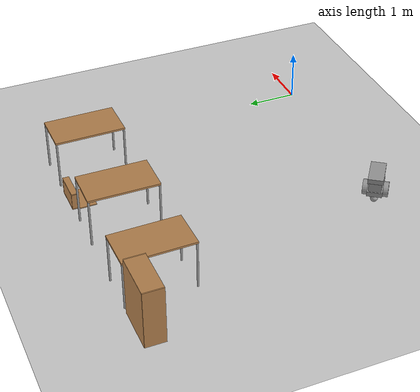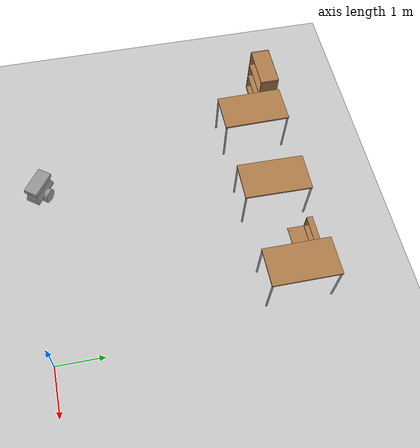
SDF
<sdf version="1.6">
 <world name="default">
  <model name="ground_plane">
   <static>1</static>
   <link name="link">
    <collision name="collision">
     <geometry><plane><normal>0 0 1</normal><size>100 100</size></plane></geometry>
     <surface><friction><ode><mu>100</mu><mu2>50</mu2></ode></friction></surface>
    </collision>
    <visual name="visual">
     <cast_shadows>0</cast_shadows>
     <geometry><plane><normal>0 0 1</normal><size>100 100</size></plane></geometry>
     <material>
      <script><uri>file://media/materials/scripts/gazebo.material</uri><name>Gazebo/Grey</name></script>
     </material>
    </visual>
   </link>
  </model>
  <model name="Robot">
   <link name="link_0">
    <pose>0.0375 0 -0.0375 0 -0 0</pose>
    <inertial>
     <mass>1</mass>
     <inertia>
      <ixx>0.166667</ixx>
      <ixy>0</ixy>
      <ixz>0</ixz>
      <iyy>0.166667</iyy>
      <iyz>0</iyz>
      <izz>0.166667</izz>
     </inertia>
    </inertial>
    <visual name="visual">
     <geometry><box><size>0.6 0.3 0.1</size></box></geometry>
     <material>
      <lighting>1</lighting>
      <script><uri>file://media/materials/scripts/gazebo.material</uri><name>Gazebo/Grey</name></script>
      <ambient>0.3 0.3 0.3 1</ambient>
      <diffuse>0.7 0.7 0.7 1</diffuse>
      <specular>0.01 0.01 0.01 1</specular>
      <emissive>0 0 0 1</emissive>
      <shader type="vertex"><normal_map>__default__</normal_map></shader>
     </material>
    </visual>
    <collision name="collision">
     <geometry><box><size>0.6 0.3 0.1</size></box></geometry>
     <surface>
      <friction>
       <ode><mu>1</mu><mu2>1</mu2><fdir1>0 0 0</fdir1><slip1>0</slip1><slip2>0</slip2></ode>
       <torsional>
        <coefficient>1</coefficient>
        <patch_radius>0</patch_radius>
        <surface_radius>0</surface_radius>
        <use_patch_radius>1</use_patch_radius>
        <ode><slip>0</slip></ode>
       </torsional>
      </friction>
      <bounce><restitution_coefficient>0</restitution_coefficient><threshold>1e+06</threshold></bounce>
      <contact>
       <collide_without_contact>0</collide_without_contact>
       <collide_without_contact_bitmask>1</collide_without_contact_bitmask>
       <collide_bitmask>1</collide_bitmask>
       <ode>
        <soft_cfm>0</soft_cfm>
        <soft_erp>0.2</soft_erp>
        <kp>1e+13</kp>
        <kd>1</kd>
        <max_vel>0.01</max_vel>
        <min_depth>0</min_depth>
       </ode>
       <bullet>
        <split_impulse>1</split_impulse>
        <split_impulse_penetration_threshold>-0.01</split_impulse_penetration_threshold>
        <soft_cfm>0</soft_cfm>
        <soft_erp>0.2</soft_erp>
        <kp>1e+13</kp>
        <kd>1</kd>
       </bullet>
      </contact>
     </surface>
    </collision>
   </link>
   <link name="link_0_clone">
    <pose>0.0375 0 0.2625 0 -0 0</pose>
    <inertial>
     <mass>1</mass>
     <inertia>
      <ixx>0.166667</ixx>
      <ixy>0</ixy>
      <ixz>0</ixz>
      <iyy>0.166667</iyy>
      <iyz>0</iyz>
      <izz>0.166667</izz>
     </inertia>
    </inertial>
    <visual name="visual">
     <geometry><box><size>0.6 0.3 0.1</size></box></geometry>
     <material>
      <lighting>1</lighting>
      <script><uri>file://media/materials/scripts/gazebo.material</uri><name>Gazebo/Grey</name></script>
      <ambient>0.3 0.3 0.3 1</ambient>
      <diffuse>0.7 0.7 0.7 1</diffuse>
      <specular>0.01 0.01 0.01 1</specular>
      <emissive>0 0 0 1</emissive>
      <shader type="vertex"><normal_map>__default__</normal_map></shader>
     </material>
    </visual>
    <collision name="collision">
     <geometry><box><size>0.6 0.3 0.1</size></box></geometry>
     <surface>
      <friction>
       <ode><mu>1</mu><mu2>1</mu2><fdir1>0 0 0</fdir1><slip1>0</slip1><slip2>0</slip2></ode>
       <torsional>
        <coefficient>1</coefficient>
        <patch_radius>0</patch_radius>
        <surface_radius>0</surface_radius>
        <use_patch_radius>1</use_patch_radius>
        <ode><slip>0</slip></ode>
       </torsional>
      </friction>
      <bounce><restitution_coefficient>0</restitution_coefficient><threshold>1e+06</threshold></bounce>
      <contact>
       <collide_without_contact>0</collide_without_contact>
       <collide_without_contact_bitmask>1</collide_without_contact_bitmask>
       <collide_bitmask>1</collide_bitmask>
       <ode>
        <soft_cfm>0</soft_cfm>
        <soft_erp>0.2</soft_erp>
        <kp>1e+13</kp>
        <kd>1</kd>
        <max_vel>0.01</max_vel>
        <min_depth>0</min_depth>
       </ode>
       <bullet>
        <split_impulse>1</split_impulse>
        <split_impulse_penetration_threshold>-0.01</split_impulse_penetration_threshold>
        <soft_cfm>0</soft_cfm>
        <soft_erp>0.2</soft_erp>
        <kp>1e+13</kp>
        <kd>1</kd>
       </bullet>
      </contact>
     </surface>
    </collision>
   </link>
   <link name="link_1">
    <pose>0.0375 0 0.1125 0 -0 0</pose>
    <inertial>
     <mass>1</mass>
     <inertia>
      <ixx>0.166667</ixx>
      <ixy>0</ixy>
      <ixz>0</ixz>
      <iyy>0.166667</iyy>
      <iyz>0</iyz>
      <izz>0.166667</izz>
     </inertia>
    </inertial>
    <visual name="visual">
     <geometry><box><size>0.55 0.25 0.2</size></box></geometry>
     <material>
      <lighting>1</lighting>
      <script><uri>file://media/materials/scripts/gazebo.material</uri><name>Gazebo/Grey</name></script>
      <ambient>0.3 0.3 0.3 1</ambient>
      <diffuse>0.7 0.7 0.7 1</diffuse>
      <specular>0.01 0.01 0.01 1</specular>
      <emissive>0 0 0 1</emissive>
      <shader type="vertex"><normal_map>__default__</normal_map></shader>
     </material>
    </visual>
    <collision name="collision">
     <geometry><box><size>0.55 0.25 0.2</size></box></geometry>
     <surface>
      <friction>
       <ode><mu>1</mu><mu2>1</mu2><fdir1>0 0 0</fdir1><slip1>0</slip1><slip2>0</slip2></ode>
       <torsional>
        <coefficient>1</coefficient>
        <patch_radius>0</patch_radius>
        <surface_radius>0</surface_radius>
        <use_patch_radius>1</use_patch_radius>
        <ode><slip>0</slip></ode>
       </torsional>
      </friction>
      <bounce><restitution_coefficient>0</restitution_coefficient><threshold>1e+06</threshold></bounce>
      <contact>
       <collide_without_contact>0</collide_without_contact>
       <collide_without_contact_bitmask>1</collide_without_contact_bitmask>
       <collide_bitmask>1</collide_bitmask>
       <ode>
        <soft_cfm>0</soft_cfm>
        <soft_erp>0.2</soft_erp>
        <kp>1e+13</kp>
        <kd>1</kd>
        <max_vel>0.01</max_vel>
        <min_depth>0</min_depth>
       </ode>
       <bullet>
        <split_impulse>1</split_impulse>
        <split_impulse_penetration_threshold>-0.01</split_impulse_penetration_threshold>
        <soft_cfm>0</soft_cfm>
        <soft_erp>0.2</soft_erp>
        <kp>1e+13</kp>
        <kd>1</kd>
       </bullet>
      </contact>
     </surface>
    </collision>
   </link>
   <link name="link_2">
    <pose>0.0375 -0.200014 -0.0875 1.5707 -0 0</pose>
    <inertial>
     <mass>1</mass>
     <inertia><ixx>0.145833</ixx><ixy>0</ixy><ixz>0</ixz><iyy>0.145833</iyy><iyz>0</iyz><izz>0.125</izz></inertia>
    </inertial>
    <visual name="visual">
     <geometry><cylinder><radius>0.15</radius><length>0.1</length></cylinder></geometry>
     <material>
      <lighting>1</lighting>
      <script><uri>file://media/materials/scripts/gazebo.material</uri><name>Gazebo/Grey</name></script>
      <ambient>0.3 0.3 0.3 1</ambient>
      <diffuse>0.7 0.7 0.7 1</diffuse>
      <specular>0.01 0.01 0.01 1</specular>
      <emissive>0 0 0 1</emissive>
      <shader type="vertex"><normal_map>__default__</normal_map></shader>
     </material>
    </visual>
    <collision name="collision">
     <geometry><cylinder><radius>0.15</radius><length>0.1</length></cylinder></geometry>
     <surface>
      <friction>
       <ode><mu>1</mu><mu2>1</mu2><fdir1>0 0 0</fdir1><slip1>0</slip1><slip2>0</slip2></ode>
       <torsional>
        <coefficient>1</coefficient>
        <patch_radius>0</patch_radius>
        <surface_radius>0</surface_radius>
        <use_patch_radius>1</use_patch_radius>
        <ode><slip>0</slip></ode>
       </torsional>
      </friction>
      <bounce><restitution_coefficient>0</restitution_coefficient><threshold>1e+06</threshold></bounce>
      <contact>
       <collide_without_contact>0</collide_without_contact>
       <collide_without_contact_bitmask>1</collide_without_contact_bitmask>
       <collide_bitmask>1</collide_bitmask>
       <ode>
        <soft_cfm>0</soft_cfm>
        <soft_erp>0.2</soft_erp>
        <kp>1e+13</kp>
        <kd>1</kd>
        <max_vel>0.01</max_vel>
        <min_depth>0</min_depth>
       </ode>
       <bullet>
        <split_impulse>1</split_impulse>
        <split_impulse_penetration_threshold>-0.01</split_impulse_penetration_threshold>
        <soft_cfm>0</soft_cfm>
        <soft_erp>0.2</soft_erp>
        <kp>1e+13</kp>
        <kd>1</kd>
       </bullet>
      </contact>
     </surface>
    </collision>
   </link>
   <link name="link_2_clone">
    <pose>0.0375 0.200014 -0.0875 1.5707 -0 0</pose>
    <inertial>
     <mass>1</mass>
     <inertia><ixx>0.145833</ixx><ixy>0</ixy><ixz>0</ixz><iyy>0.145833</iyy><iyz>0</iyz><izz>0.125</izz></inertia>
    </inertial>
    <visual name="visual">
     <geometry><cylinder><radius>0.15</radius><length>0.1</length></cylinder></geometry>
     <material>
      <lighting>1</lighting>
      <script><uri>file://media/materials/scripts/gazebo.material</uri><name>Gazebo/Grey</name></script>
      <ambient>0.3 0.3 0.3 1</ambient>
      <diffuse>0.7 0.7 0.7 1</diffuse>
      <specular>0.01 0.01 0.01 1</specular>
      <emissive>0 0 0 1</emissive>
      <shader type="vertex"><normal_map>__default__</normal_map></shader>
     </material>
    </visual>
    <collision name="collision">
     <geometry><cylinder><radius>0.15</radius><length>0.1</length></cylinder></geometry>
     <surface>
      <friction>
       <ode><mu>1</mu><mu2>1</mu2><fdir1>0 0 0</fdir1><slip1>0</slip1><slip2>0</slip2></ode>
       <torsional>
        <coefficient>1</coefficient>
        <patch_radius>0</patch_radius>
        <surface_radius>0</surface_radius>
        <use_patch_radius>1</use_patch_radius>
        <ode><slip>0</slip></ode>
       </torsional>
      </friction>
      <bounce><restitution_coefficient>0</restitution_coefficient><threshold>1e+06</threshold></bounce>
      <contact>
       <collide_without_contact>0</collide_without_contact>
       <collide_without_contact_bitmask>1</collide_without_contact_bitmask>
       <collide_bitmask>1</collide_bitmask>
       <ode>
        <soft_cfm>0</soft_cfm>
        <soft_erp>0.2</soft_erp>
        <kp>1e+13</kp>
        <kd>1</kd>
        <max_vel>0.01</max_vel>
        <min_depth>0</min_depth>
       </ode>
       <bullet>
        <split_impulse>1</split_impulse>
        <split_impulse_penetration_threshold>-0.01</split_impulse_penetration_threshold>
        <soft_cfm>0</soft_cfm>
        <soft_erp>0.2</soft_erp>
        <kp>1e+13</kp>
        <kd>1</kd>
       </bullet>
      </contact>
     </surface>
    </collision>
   </link>
   <link name="link_3">
    <pose>-0.1875 0 -0.1625 0 -0 0</pose>
    <inertial>
     <mass>1</mass>
     <inertia><ixx>0.1</ixx><ixy>0</ixy><ixz>0</ixz><iyy>0.1</iyy><iyz>0</iyz><izz>0.1</izz></inertia>
    </inertial>
    <visual name="visual">
     <geometry><sphere><radius>0.075</radius></sphere></geometry>
     <material>
      <lighting>1</lighting>
      <script><uri>file://media/materials/scripts/gazebo.material</uri><name>Gazebo/Grey</name></script>
      <ambient>0.3 0.3 0.3 1</ambient>
      <diffuse>0.7 0.7 0.7 1</diffuse>
      <specular>0.01 0.01 0.01 1</specular>
      <emissive>0 0 0 1</emissive>
      <shader type="vertex"><normal_map>__default__</normal_map></shader>
     </material>
    </visual>
    <collision name="collision">
     <geometry><sphere><radius>0.075</radius></sphere></geometry>
     <surface>
      <friction>
       <ode><mu>1</mu><mu2>1</mu2><fdir1>0 0 0</fdir1><slip1>0</slip1><slip2>0</slip2></ode>
       <torsional>
        <coefficient>1</coefficient>
        <patch_radius>0</patch_radius>
        <surface_radius>0</surface_radius>
        <use_patch_radius>1</use_patch_radius>
        <ode><slip>0</slip></ode>
       </torsional>
      </friction>
      <bounce><restitution_coefficient>0</restitution_coefficient><threshold>1e+06</threshold></bounce>
      <contact>
       <collide_without_contact>0</collide_without_contact>
       <collide_without_contact_bitmask>1</collide_without_contact_bitmask>
       <collide_bitmask>1</collide_bitmask>
       <ode>
        <soft_cfm>0</soft_cfm>
        <soft_erp>0.2</soft_erp>
        <kp>1e+13</kp>
        <kd>1</kd>
        <max_vel>0.01</max_vel>
        <min_depth>0</min_depth>
       </ode>
       <bullet>
        <split_impulse>1</split_impulse>
        <split_impulse_penetration_threshold>-0.01</split_impulse_penetration_threshold>
        <soft_cfm>0</soft_cfm>
        <soft_erp>0.2</soft_erp>
        <kp>1e+13</kp>
        <kd>1</kd>
       </bullet>
      </contact>
     </surface>
    </collision>
   </link>
   <joint name="link_0_JOINT_0" type="fixed">
    <parent>link_0</parent>
    <child>link_1</child>
    <physics>
     <ode><limit><cfm>0</cfm><erp>0.2</erp></limit><suspension><cfm>0</cfm><erp>0.2</erp></suspension></ode>
    </physics>
   </joint>
   <joint name="link_0_JOINT_2" type="revolute">
    <parent>link_0</parent>
    <child>link_2</child>
    <axis>
     <xyz>0 0 1</xyz>
     <use_parent_model_frame>0</use_parent_model_frame>
     <limit>
      <lower>-1.79769e+308</lower>
      <upper>1.79769e+308</upper>
      <effort>-1</effort>
      <velocity>-1</velocity>
     </limit>
     <dynamics>
      <spring_reference>0</spring_reference>
      <spring_stiffness>0</spring_stiffness>
      <damping>0</damping>
     </dynamics>
    </axis>
    <physics>
     <ode><limit><cfm>0</cfm><erp>0.2</erp></limit><suspension><cfm>0</cfm><erp>0.2</erp></suspension></ode>
    </physics>
   </joint>
   <joint name="link_0_JOINT_3" type="revolute">
    <parent>link_0</parent>
    <child>link_2_clone</child>
    <axis>
     <xyz>0 0 1</xyz>
     <use_parent_model_frame>0</use_parent_model_frame>
     <limit>
      <lower>-1.79769e+308</lower>
      <upper>1.79769e+308</upper>
      <effort>-1</effort>
      <velocity>-1</velocity>
     </limit>
     <dynamics>
      <spring_reference>0</spring_reference>
      <spring_stiffness>0</spring_stiffness>
      <damping>0</damping>
     </dynamics>
    </axis>
    <physics>
     <ode><limit><cfm>0</cfm><erp>0.2</erp></limit><suspension><cfm>0</cfm><erp>0.2</erp></suspension></ode>
    </physics>
   </joint>
   <joint name="link_0_JOINT_4" type="ball">
    <parent>link_0</parent>
    <child>link_3</child>
    <physics>
     <ode><limit><cfm>0</cfm><erp>0.2</erp></limit><suspension><cfm>0</cfm><erp>0.2</erp></suspension></ode>
    </physics>
   </joint>
   <joint name="link_1_JOINT_1" type="fixed">
    <parent>link_1</parent>
    <child>link_0_clone</child>
    <physics>
     <ode><limit><cfm>0</cfm><erp>0.2</erp></limit><suspension><cfm>0</cfm><erp>0.2</erp></suspension></ode>
    </physics>
   </joint>
   <static>0</static>
   <pose>-3.90605 0.122373 0.237504 4e-06 -1.4e-05 -0.622999</pose>
  </model>
  <model name="table_clone_2">
   <static>0</static>
   <link name="link">
    <collision name="surface">
     <pose>0 0 1 0 -0 0</pose>
     <geometry><box><size>1.5 0.8 0.03</size></box></geometry>
     <surface><friction><ode><mu>0.6</mu><mu2>0.6</mu2></ode></friction></surface>
    </collision>
    <visual name="visual1">
     <pose>0 0 1 0 -0 0</pose>
     <geometry><box><size>1.4 0.8 0.04</size></box></geometry>
     <material>
      <script><uri>file://media/materials/scripts/gazebo.material</uri><name>Gazebo/Wood</name></script>
     </material>
    </visual>
    <collision name="front_left_leg">
     <pose>0.68 0.38 0.5 0 -0 0</pose>
     <geometry><cylinder><radius>0.02</radius><length>1</length></cylinder></geometry>
    </collision>
    <visual name="front_left_leg">
     <pose>0.68 0.38 0.5 0 -0 0</pose>
     <geometry><cylinder><radius>0.02</radius><length>1</length></cylinder></geometry>
     <material>
      <script><uri>file://media/materials/scripts/gazebo.material</uri><name>Gazebo/Grey</name></script>
     </material>
    </visual>
    <collision name="front_right_leg">
     <pose>0.68 -0.38 0.5 0 -0 0</pose>
     <geometry><cylinder><radius>0.02</radius><length>1</length></cylinder></geometry>
    </collision>
    <visual name="front_right_leg">
     <pose>0.68 -0.38 0.5 0 -0 0</pose>
     <geometry><cylinder><radius>0.02</radius><length>1</length></cylinder></geometry>
     <material>
      <script><uri>file://media/materials/scripts/gazebo.material</uri><name>Gazebo/Grey</name></script>
     </material>
    </visual>
    <collision name="back_right_leg">
     <pose>-0.68 -0.38 0.5 0 -0 0</pose>
     <geometry><cylinder><radius>0.02</radius><length>1</length></cylinder></geometry>
    </collision>
    <visual name="back_right_leg">
     <pose>-0.68 -0.38 0.5 0 -0 0</pose>
     <geometry><cylinder><radius>0.02</radius><length>1</length></cylinder></geometry>
     <material>
      <script><uri>file://media/materials/scripts/gazebo.material</uri><name>Gazebo/Grey</name></script>
     </material>
    </visual>
    <collision name="back_left_leg">
     <pose>-0.68 0.38 0.5 0 -0 0</pose>
     <geometry><cylinder><radius>0.02</radius><length>1</length></cylinder></geometry>
    </collision>
    <visual name="back_left_leg">
     <pose>-0.68 0.38 0.5 0 -0 0</pose>
     <geometry><cylinder><radius>0.02</radius><length>1</length></cylinder></geometry>
     <material>
      <script><uri>file://media/materials/scripts/gazebo.material</uri><name>Gazebo/Grey</name></script>
     </material>
    </visual>
    <inertial>
     <inertia><ixx>1</ixx><ixy>0</ixy><ixz>0</ixz><iyy>1</iyy><iyz>0</iyz><izz>1</izz></inertia>
     <mass>1</mass>
    </inertial>
   </link>
   <pose>-4.60728 4.95686 -1e-06 0 -1e-06 1.58468</pose>
  </model>
  <model name="table_clone_3">
   <static>0</static>
   <link name="link">
    <collision name="surface">
     <pose>0 0 1 0 -0 0</pose>
     <geometry><box><size>1.5 0.8 0.03</size></box></geometry>
     <surface><friction><ode><mu>0.6</mu><mu2>0.6</mu2></ode></friction></surface>
    </collision>
    <visual name="visual1">
     <pose>0 0 1 0 -0 0</pose>
     <geometry><box><size>1.4 0.8 0.04</size></box></geometry>
     <material>
      <script><uri>file://media/materials/scripts/gazebo.material</uri><name>Gazebo/Wood</name></script>
     </material>
    </visual>
    <collision name="front_left_leg">
     <pose>0.68 0.38 0.5 0 -0 0</pose>
     <geometry><cylinder><radius>0.02</radius><length>1</length></cylinder></geometry>
    </collision>
    <visual name="front_left_leg">
     <pose>0.68 0.38 0.5 0 -0 0</pose>
     <geometry><cylinder><radius>0.02</radius><length>1</length></cylinder></geometry>
     <material>
      <script><uri>file://media/materials/scripts/gazebo.material</uri><name>Gazebo/Grey</name></script>
     </material>
    </visual>
    <collision name="front_right_leg">
     <pose>0.68 -0.38 0.5 0 -0 0</pose>
     <geometry><cylinder><radius>0.02</radius><length>1</length></cylinder></geometry>
    </collision>
    <visual name="front_right_leg">
     <pose>0.68 -0.38 0.5 0 -0 0</pose>
     <geometry><cylinder><radius>0.02</radius><length>1</length></cylinder></geometry>
     <material>
      <script><uri>file://media/materials/scripts/gazebo.material</uri><name>Gazebo/Grey</name></script>
     </material>
    </visual>
    <collision name="back_right_leg">
     <pose>-0.68 -0.38 0.5 0 -0 0</pose>
     <geometry><cylinder><radius>0.02</radius><length>1</length></cylinder></geometry>
    </collision>
    <visual name="back_right_leg">
     <pose>-0.68 -0.38 0.5 0 -0 0</pose>
     <geometry><cylinder><radius>0.02</radius><length>1</length></cylinder></geometry>
     <material>
      <script><uri>file://media/materials/scripts/gazebo.material</uri><name>Gazebo/Grey</name></script>
     </material>
    </visual>
    <collision name="back_left_leg">
     <pose>-0.68 0.38 0.5 0 -0 0</pose>
     <geometry><cylinder><radius>0.02</radius><length>1</length></cylinder></geometry>
    </collision>
    <visual name="back_left_leg">
     <pose>-0.68 0.38 0.5 0 -0 0</pose>
     <geometry><cylinder><radius>0.02</radius><length>1</length></cylinder></geometry>
     <material>
      <script><uri>file://media/materials/scripts/gazebo.material</uri><name>Gazebo/Grey</name></script>
     </material>
    </visual>
    <inertial>
     <inertia><ixx>1</ixx><ixy>0</ixy><ixz>0</ixz><iyy>1</iyy><iyz>0</iyz><izz>1</izz></inertia>
     <mass>1</mass>
    </inertial>
   </link>
   <pose>-2.80173 4.95726 -8e-06 1e-06 -0 1.56252</pose>
  </model>
  <model name="table_clone_5">
   <static>0</static>
   <link name="link">
    <collision name="surface">
     <pose>0 0 1 0 -0 0</pose>
     <geometry><box><size>1.5 0.8 0.03</size></box></geometry>
     <surface><friction><ode><mu>0.6</mu><mu2>0.6</mu2></ode></friction></surface>
    </collision>
    <visual name="visual1">
     <pose>0 0 1 0 -0 0</pose>
     <geometry><box><size>1.4 0.8 0.04</size></box></geometry>
     <material>
      <script><uri>file://media/materials/scripts/gazebo.material</uri><name>Gazebo/Wood</name></script>
     </material>
    </visual>
    <collision name="front_left_leg">
     <pose>0.68 0.38 0.5 0 -0 0</pose>
     <geometry><cylinder><radius>0.02</radius><length>1</length></cylinder></geometry>
    </collision>
    <visual name="front_left_leg">
     <pose>0.68 0.38 0.5 0 -0 0</pose>
     <geometry><cylinder><radius>0.02</radius><length>1</length></cylinder></geometry>
     <material>
      <script><uri>file://media/materials/scripts/gazebo.material</uri><name>Gazebo/Grey</name></script>
     </material>
    </visual>
    <collision name="front_right_leg">
     <pose>0.68 -0.38 0.5 0 -0 0</pose>
     <geometry><cylinder><radius>0.02</radius><length>1</length></cylinder></geometry>
    </collision>
    <visual name="front_right_leg">
     <pose>0.68 -0.38 0.5 0 -0 0</pose>
     <geometry><cylinder><radius>0.02</radius><length>1</length></cylinder></geometry>
     <material>
      <script><uri>file://media/materials/scripts/gazebo.material</uri><name>Gazebo/Grey</name></script>
     </material>
    </visual>
    <collision name="back_right_leg">
     <pose>-0.68 -0.38 0.5 0 -0 0</pose>
     <geometry><cylinder><radius>0.02</radius><length>1</length></cylinder></geometry>
    </collision>
    <visual name="back_right_leg">
     <pose>-0.68 -0.38 0.5 0 -0 0</pose>
     <geometry><cylinder><radius>0.02</radius><length>1</length></cylinder></geometry>
     <material>
      <script><uri>file://media/materials/scripts/gazebo.material</uri><name>Gazebo/Grey</name></script>
     </material>
    </visual>
    <collision name="back_left_leg">
     <pose>-0.68 0.38 0.5 0 -0 0</pose>
     <geometry><cylinder><radius>0.02</radius><length>1</length></cylinder></geometry>
    </collision>
    <visual name="back_left_leg">
     <pose>-0.68 0.38 0.5 0 -0 0</pose>
     <geometry><cylinder><radius>0.02</radius><length>1</length></cylinder></geometry>
     <material>
      <script><uri>file://media/materials/scripts/gazebo.material</uri><name>Gazebo/Grey</name></script>
     </material>
    </visual>
    <inertial>
     <inertia><ixx>1</ixx><ixy>0</ixy><ixz>0</ixz><iyy>1</iyy><iyz>0</iyz><izz>1</izz></inertia>
     <mass>1</mass>
    </inertial>
   </link>
   <pose>-0.839903 4.97738 -2e-06 0 -0 1.57502</pose>
  </model>
  <model name="wooden_case_metal_peg">
   <link name="wooden_case::base">
    <pose>0 0 0.024 0 -0 0</pose>
    <inertial>
     <pose>-0.022184 0 0.171592 0 -0 0</pose>
     <mass>3.96264</mass>
     <inertia>
      <ixx>0.213536</ixx>
      <ixy>0</ixy>
      <ixz>0.000779377</ixz>
      <iyy>0.0708943</iyy>
      <iyz>0</iyz>
      <izz>0.154604</izz>
     </inertia>
    </inertial>
    <collision name="collision_back">
     <pose>-0.053975 0 0.1778 0 -0 0</pose>
     <geometry><box><size>0.01905 0.5461 0.3175</size></box></geometry>
     <surface>
      <contact>
       <poissons_ratio>0.347</poissons_ratio>
       <elastic_modulus>8.8e+09</elastic_modulus>
       <ode><kp>100000</kp><kd>100</kd><max_vel>100</max_vel><min_depth>0.001</min_depth></ode>
      </contact>
      <friction>
       <torsional>
        <coefficient>1</coefficient>
        <use_patch_radius>0</use_patch_radius>
        <surface_radius>0.01</surface_radius>
       </torsional>
      </friction>
     </surface>
    </collision>
    <visual name="visual_back">
     <pose>-0.053975 0 0.1778 0 -0 0</pose>
     <geometry><box><size>0.01905 0.5461 0.3175</size></box></geometry>
     <material>
      <script><uri>file://media/materials/scripts/gazebo.material</uri><name>Gazebo/Wood</name></script>
     </material>
    </visual>
    <collision name="collision_bottom">
     <pose>0 0 0.009525 0 -0 0</pose>
     <geometry><box><size>0.127 0.5842 0.01905</size></box></geometry>
     <surface>
      <contact>
       <poissons_ratio>0.347</poissons_ratio>
       <elastic_modulus>8.8e+09</elastic_modulus>
       <ode><kp>100000</kp><kd>100</kd><max_vel>100</max_vel><min_depth>0.001</min_depth></ode>
      </contact>
      <friction>
       <torsional>
        <coefficient>1</coefficient>
        <use_patch_radius>0</use_patch_radius>
        <surface_radius>0.01</surface_radius>
       </torsional>
      </friction>
     </surface>
    </collision>
    <visual name="visual_bottom">
     <pose>0 0 0.009525 0 -0 0</pose>
     <geometry><box><size>0.127 0.5842 0.01905</size></box></geometry>
     <material>
      <script><uri>file://media/materials/scripts/gazebo.material</uri><name>Gazebo/Wood</name></script>
     </material>
    </visual>
    <collision name="collision_top">
     <pose>0 0 0.346075 0 -0 0</pose>
     <geometry><box><size>0.127 0.5842 0.01905</size></box></geometry>
     <surface>
      <contact>
       <poissons_ratio>0.347</poissons_ratio>
       <elastic_modulus>8.8e+09</elastic_modulus>
       <ode><kp>100000</kp><kd>100</kd><max_vel>100</max_vel><min_depth>0.001</min_depth></ode>
      </contact>
      <friction>
       <torsional>
        <coefficient>1</coefficient>
        <use_patch_radius>0</use_patch_radius>
        <surface_radius>0.01</surface_radius>
       </torsional>
      </friction>
     </surface>
    </collision>
    <visual name="visual_top">
     <pose>0 0 0.346075 0 -0 0</pose>
     <geometry><box><size>0.127 0.5842 0.01905</size></box></geometry>
     <material>
      <script><uri>file://media/materials/scripts/gazebo.material</uri><name>Gazebo/Wood</name></script>
     </material>
    </visual>
    <collision name="collision_left">
     <pose>0 -0.282575 0.1778 0 -0 0</pose>
     <geometry><box><size>0.127 0.01905 0.3175</size></box></geometry>
     <surface>
      <contact>
       <poissons_ratio>0.347</poissons_ratio>
       <elastic_modulus>8.8e+09</elastic_modulus>
       <ode><kp>100000</kp><kd>100</kd><max_vel>100</max_vel><min_depth>0.001</min_depth></ode>
      </contact>
      <friction>
       <torsional>
        <coefficient>1</coefficient>
        <use_patch_radius>0</use_patch_radius>
        <surface_radius>0.01</surface_radius>
       </torsional>
      </friction>
     </surface>
    </collision>
    <visual name="visual_left">
     <pose>0 -0.282575 0.1778 0 -0 0</pose>
     <geometry><box><size>0.127 0.01905 0.3175</size></box></geometry>
     <material>
      <script><uri>file://media/materials/scripts/gazebo.material</uri><name>Gazebo/Wood</name></script>
     </material>
    </visual>
    <collision name="collision_right">
     <pose>0 0.282575 0.1778 0 -0 0</pose>
     <geometry><box><size>0.127 0.01905 0.3175</size></box></geometry>
     <surface>
      <contact>
       <poissons_ratio>0.347</poissons_ratio>
       <elastic_modulus>8.8e+09</elastic_modulus>
       <ode><kp>100000</kp><kd>100</kd><max_vel>100</max_vel><min_depth>0.001</min_depth></ode>
      </contact>
      <friction>
       <torsional>
        <coefficient>1</coefficient>
        <use_patch_radius>0</use_patch_radius>
        <surface_radius>0.01</surface_radius>
       </torsional>
      </friction>
     </surface>
    </collision>
    <visual name="visual_right">
     <pose>0 0.282575 0.1778 0 -0 0</pose>
     <geometry><box><size>0.127 0.01905 0.3175</size></box></geometry>
     <material>
      <script><uri>file://media/materials/scripts/gazebo.material</uri><name>Gazebo/Wood</name></script>
     </material>
    </visual>
    <collision name="collision_block_left">
     <pose>0.0095 -0.2151 -0.012 0 -0 0</pose>
     <geometry><box><size>0.108 0.05 0.024</size></box></geometry>
     <surface>
      <contact>
       <poissons_ratio>0.347</poissons_ratio>
       <elastic_modulus>8.8e+09</elastic_modulus>
       <ode><kp>100000</kp><kd>100</kd><max_vel>100</max_vel><min_depth>0.001</min_depth></ode>
      </contact>
      <friction>
       <torsional>
        <coefficient>1</coefficient>
        <use_patch_radius>0</use_patch_radius>
        <surface_radius>0.01</surface_radius>
       </torsional>
      </friction>
     </surface>
    </collision>
    <visual name="visual_block_left">
     <pose>0.0095 -0.2151 -0.012 0 -0 0</pose>
     <geometry><box><size>0.108 0.05 0.024</size></box></geometry>
     <material>
      <script><uri>file://media/materials/scripts/gazebo.material</uri><name>Gazebo/Wood</name></script>
     </material>
    </visual>
    <collision name="collision_block_right">
     <pose>0.0095 0.2151 -0.012 0 -0 0</pose>
     <geometry><box><size>0.108 0.05 0.024</size></box></geometry>
     <surface>
      <contact>
       <poissons_ratio>0.347</poissons_ratio>
       <elastic_modulus>8.8e+09</elastic_modulus>
       <ode><kp>100000</kp><kd>100</kd><max_vel>100</max_vel><min_depth>0.001</min_depth></ode>
      </contact>
      <friction>
       <torsional>
        <coefficient>1</coefficient>
        <use_patch_radius>0</use_patch_radius>
        <surface_radius>0.01</surface_radius>
       </torsional>
      </friction>
     </surface>
    </collision>
    <visual name="visual_block_right">
     <pose>0.0095 0.2151 -0.012 0 -0 0</pose>
     <geometry><box><size>0.108 0.05 0.024</size></box></geometry>
     <material>
      <script><uri>file://media/materials/scripts/gazebo.material</uri><name>Gazebo/Wood</name></script>
     </material>
    </visual>
   </link>
   <link name="wooden_case::lid">
    <pose>0.243775 0 0.009525 0 -0 0</pose>
    <inertial>
     <mass>1.97874</mass>
     <inertia>
      <ixx>0.0563367</ixx>
      <ixy>0</ixy>
      <ixz>0</ixz>
      <iyy>0.020911</iyy>
      <iyz>0</iyz>
      <izz>0.0771281</izz>
     </inertia>
    </inertial>
    <collision name="collision">
     <geometry><box><size>0.3556 0.5842 0.01905</size></box></geometry>
     <surface>
      <contact>
       <poissons_ratio>0.347</poissons_ratio>
       <elastic_modulus>8.8e+09</elastic_modulus>
       <ode><kp>100000</kp><kd>100</kd><max_vel>100</max_vel><min_depth>0.001</min_depth></ode>
      </contact>
      <friction>
       <torsional>
        <coefficient>1</coefficient>
        <use_patch_radius>0</use_patch_radius>
        <surface_radius>0.01</surface_radius>
       </torsional>
      </friction>
     </surface>
    </collision>
    <visual name="visual">
     <geometry><box><size>0.3556 0.5842 0.01905</size></box></geometry>
     <material>
      <script><uri>file://media/materials/scripts/gazebo.material</uri><name>Gazebo/Wood</name></script>
     </material>
    </visual>
    <visual name="tee_nut_1">
     <pose>0.122 -0.216 0 0 -0 0</pose>
     <geometry><cylinder><radius>0.00635</radius><length>0.0192405</length></cylinder></geometry>
     <material>
      <script><uri>file://media/materials/scripts/gazebo.material</uri><name>Gazebo/Grey</name></script>
     </material>
    </visual>
    <visual name="tee_nut_2">
     <pose>0.122 -0.088 0 0 -0 0</pose>
     <geometry><cylinder><radius>0.00635</radius><length>0.0192405</length></cylinder></geometry>
     <material>
      <script><uri>file://media/materials/scripts/gazebo.material</uri><name>Gazebo/Grey</name></script>
     </material>
    </visual>
    <visual name="tee_nut_3">
     <pose>0.122 0.088 0 0 -0 0</pose>
     <geometry><cylinder><radius>0.00635</radius><length>0.0192405</length></cylinder></geometry>
     <material>
      <script><uri>file://media/materials/scripts/gazebo.material</uri><name>Gazebo/Grey</name></script>
     </material>
    </visual>
    <visual name="tee_nut_4">
     <pose>0.122 0.216 0 0 -0 0</pose>
     <geometry><cylinder><radius>0.00635</radius><length>0.0192405</length></cylinder></geometry>
     <material>
      <script><uri>file://media/materials/scripts/gazebo.material</uri><name>Gazebo/Grey</name></script>
     </material>
    </visual>
   </link>
   <joint name="wooden_case::lid_hinge" type="revolute">
    <pose>-0.1778 0 0.01905 0 -0 0</pose>
    <parent>wooden_case::base</parent>
    <child>wooden_case::lid</child>
    <axis>
     <xyz>0 1 0</xyz>
     <limit><upper>0.523599</upper><lower>-1.5708</lower></limit>
     <use_parent_model_frame>0</use_parent_model_frame>
     <dynamics><spring_reference>0</spring_reference><spring_stiffness>0</spring_stiffness></dynamics>
    </axis>
   </joint>
   <link name="peg::link">
    <pose>0.365774 0.216 0.05005 0 -0 0</pose>
    <inertial>
     <mass>0.0121</mass>
     <inertia>
      <ixx>3.90898e-06</ixx>
      <ixy>0</ixy>
      <ixz>0</ixz>
      <iyy>3.90898e-06</iyy>
      <iyz>0</iyz>
      <izz>6.58845e-08</izz>
     </inertia>
    </inertial>
    <collision name="collision">
     <geometry><cylinder><radius>0.0033</radius><length>0.062</length></cylinder></geometry>
     <surface>
      <contact>
       <poissons_ratio>0.305</poissons_ratio>
       <elastic_modulus>2e+11</elastic_modulus>
       <ode><kp>100000</kp><kd>100</kd><max_vel>100</max_vel><min_depth>0.001</min_depth></ode>
      </contact>
      <friction>
       <torsional>
        <coefficient>1</coefficient>
        <use_patch_radius>0</use_patch_radius>
        <surface_radius>0.01</surface_radius>
       </torsional>
      </friction>
     </surface>
    </collision>
    <visual name="visual">
     <geometry><cylinder><radius>0.0033</radius><length>0.062</length></cylinder></geometry>
     <material>
      <script><uri>file://media/materials/scripts/gazebo.material</uri><name>Gazebo/Grey</name></script>
     </material>
    </visual>
   </link>
   <joint name="case_peg" type="revolute">
    <child>peg::link</child>
    <parent>wooden_case::lid</parent>
    <axis>
     <xyz>0 0 1</xyz>
     <limit><upper>0</upper><lower>0</lower></limit>
     <use_parent_model_frame>0</use_parent_model_frame>
     <dynamics><spring_reference>0</spring_reference><spring_stiffness>0</spring_stiffness></dynamics>
    </axis>
   </joint>
   <pose>-1.78164 5.6089 -0.001057 -0 -0.000427 -1.56739</pose>
  </model>
  <model name="bookshelf">
   <static>1</static>
   <link name="link">
    <inertial><mass>1</mass></inertial>
    <collision name="back">
     <pose>0 0.005 0.6 0 -0 0</pose>
     <geometry><box><size>0.9 0.01 1.2</size></box></geometry>
    </collision>
    <visual name="visual1">
     <pose>0 0.005 0.6 0 -0 0</pose>
     <geometry><box><size>0.9 0.01 1.2</size></box></geometry>
     <material>
      <script><uri>file://media/materials/scripts/gazebo.material</uri><name>Gazebo/Wood</name></script>
     </material>
    </visual>
    <collision name="left_side">
     <pose>0.45 -0.195 0.6 0 -0 0</pose>
     <geometry><box><size>0.02 0.4 1.2</size></box></geometry>
    </collision>
    <visual name="visual2">
     <pose>0.45 -0.195 0.6 0 -0 0</pose>
     <geometry><box><size>0.02 0.4 1.2</size></box></geometry>
     <material>
      <script><uri>file://media/materials/scripts/gazebo.material</uri><name>Gazebo/Wood</name></script>
     </material>
    </visual>
    <collision name="right_side">
     <pose>-0.45 -0.195 0.6 0 -0 0</pose>
     <geometry><box><size>0.02 0.4 1.2</size></box></geometry>
    </collision>
    <visual name="visual3">
     <pose>-0.45 -0.195 0.6 0 -0 0</pose>
     <geometry><box><size>0.02 0.4 1.2</size></box></geometry>
     <material>
      <script><uri>file://media/materials/scripts/gazebo.material</uri><name>Gazebo/Wood</name></script>
     </material>
    </visual>
    <collision name="bottom">
     <pose>0 -0.195 0.03 0 -0 0</pose>
     <geometry><box><size>0.88 0.4 0.06</size></box></geometry>
    </collision>
    <visual name="visual4">
     <pose>0 -0.195 0.03 0 -0 0</pose>
     <geometry><box><size>0.88 0.4 0.06</size></box></geometry>
     <material>
      <script><uri>file://media/materials/scripts/gazebo.material</uri><name>Gazebo/Wood</name></script>
     </material>
    </visual>
    <collision name="top">
     <pose>0 -0.195 1.19 0 -0 0</pose>
     <geometry><box><size>0.88 0.4 0.02</size></box></geometry>
    </collision>
    <visual name="visual5">
     <pose>0 -0.195 1.19 0 -0 0</pose>
     <geometry><box><size>0.88 0.4 0.02</size></box></geometry>
     <material>
      <script><uri>file://media/materials/scripts/gazebo.material</uri><name>Gazebo/Wood</name></script>
     </material>
    </visual>
    <collision name="low_shelf">
     <pose>0 -0.195 0.43 0 -0 0</pose>
     <geometry><box><size>0.88 0.4 0.02</size></box></geometry>
    </collision>
    <visual name="visual6">
     <pose>0 -0.195 0.43 0 -0 0</pose>
     <geometry><box><size>0.88 0.4 0.02</size></box></geometry>
     <material>
      <script><uri>file://media/materials/scripts/gazebo.material</uri><name>Gazebo/Wood</name></script>
     </material>
    </visual>
    <collision name="high_shelf">
     <pose>0 -0.195 0.8 0 -0 0</pose>
     <geometry><box><size>0.88 0.4 0.02</size></box></geometry>
    </collision>
    <visual name="visual7">
     <pose>0 -0.195 0.8 0 -0 0</pose>
     <geometry><box><size>0.88 0.4 0.02</size></box></geometry>
     <material>
      <script><uri>file://media/materials/scripts/gazebo.material</uri><name>Gazebo/Wood</name></script>
     </material>
    </visual>
   </link>
   <pose>-5.57412 5.64554 0 0 -0 0</pose>
  </model>
 </world>
</sdf>
